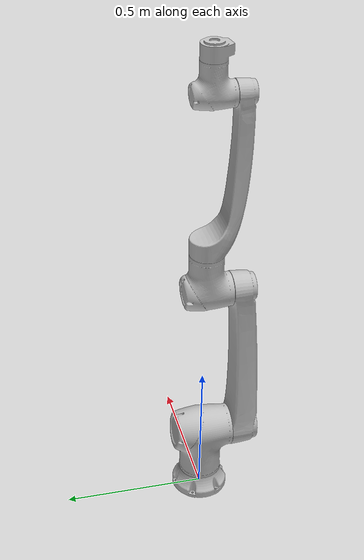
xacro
<robot
  name="elfin10_l" xmlns:xacro="http://www.ros.org/wiki/xacro">

  <xacro:include filename="$(find elfin_description)/urdf/materials.xacro" />

  <xacro:include filename="$(find elfin_description)/urdf/elfin_robot.gazebo" />

  <xacro:include filename="$(find elfin_description)/urdf/elfin_transmission.xacro" />

  <xacro:property name="coef" value="0.000000001"/>

  <link name="world" />

  <joint name="world_base" type="fixed">
    <origin
      xyz="0 0 0"
      rpy="0 0 0" />
    <parent
      link="world" />
    <child
      link="elfin_base_link" />
  </joint>

  <link name="elfin_base_link" />

  <joint name="elfin_base_joint" type="fixed">
    <origin
      xyz="0 0 0"
      rpy="0 0 0" />

    <parent
      link="elfin_base_link" />
    <child
      link="elfin_base" />
  </joint>
  <link
    name="elfin_base">
    <inertial>
      <origin
        xyz="-0.00226511349377665 4.35718066723423E-06 0.0325128562537015"
        rpy="0 0 0" />
      <mass
        value="1.66727740473724" />
      <inertia
        ixx="0.004269288474386"
        ixy="6.02518130623966E-08"
        ixz="-6.92087963593712E-05"
        iyy="0.00385585336301628"
        iyz="-5.51423740999103E-08"
        izz="0.00682044733276819" />
    </inertial>
    <visual>
      <origin
        xyz="0 0 0"
        rpy="0 0 0" />
      <geometry>
        <mesh
          filename="package://elfin_description/meshes/elfin10_l/elfin_base.STL" />
      </geometry>
      <material
        name="">
        <color
          rgba="0.752941176470588 0.752941176470588 0.752941176470588 1" />
      </material>
    </visual>
    <collision>
      <origin
        xyz="0 0 0"
        rpy="0 0 0" />
      <geometry>
        <mesh
          filename="package://elfin_description/meshes/elfin10_l/elfin_base.STL" />
      </geometry>
    </collision>
  </link>
  <link
    name="elfin_link1">
    <inertial>
      <origin
        xyz="7.6115220281183E-07 -0.00299993146131653 -0.0432740318305943"
        rpy="0 0 0" />
      <mass
        value="6.35899572879904" />
      <inertia
        ixx="0.0391771189350117"
        ixy="5.46819690041112E-08"
        ixz="4.18972540516351E-07"
        iyy="0.0381555139127934"
        iyz="0.00661206821297882"
        izz="0.0211340214080411" />
    </inertial>
    <visual>
      <origin
        xyz="0 0 0"
        rpy="0 0 0" />
      <geometry>
        <mesh
          filename="package://elfin_description/meshes/elfin10_l/elfin_link1.STL" />
      </geometry>
      <material
        name="">
        <color
          rgba="0.752941176470588 0.752941176470588 0.752941176470588 1" />
      </material>
    </visual>
    <collision>
      <origin
        xyz="0 0 0"
        rpy="0 0 0" />
      <geometry>
        <mesh
          filename="package://elfin_description/meshes/elfin10_l/elfin_link1.STL" />
      </geometry>
    </collision>
  </link>
  <joint
    name="elfin_joint1"
    type="revolute">
    <origin
      xyz="0 0 0.26"
      rpy="0 0 0" />
    <parent
      link="elfin_base" />
    <child
      link="elfin_link1" />
    <axis
      xyz="0 0 1" />
    <limit
      lower="-3.14"
      upper="3.14"
      effort="420"
      velocity="1.57" />
  </joint>
  <link
    name="elfin_link2">
    <inertial>
      <origin
        xyz="1.26562279557746E-05 0.258784601799915 0.144926112167098"
        rpy="0 0 0" />
      <mass
        value="6.55089875805688" />
      <inertia
        ixx="0.247195043947412"
        ixy="-2.70734939897219E-05"
        ixz="-3.78513402564327E-06"
        iyy="0.0107113621840064"
        iyz="0.00837472845545797"
        izz="0.250565757745814" />
    </inertial>
    <visual>
      <origin
        xyz="0 0 0"
        rpy="0 0 0" />
      <geometry>
        <mesh
          filename="package://elfin_description/meshes/elfin10_l/elfin_link2.STL" />
      </geometry>
      <material
        name="">
        <color
          rgba="0.752941176470588 0.752941176470588 0.752941176470588 1" />
      </material>
    </visual>
    <collision>
      <origin
        xyz="0 0 0"
        rpy="0 0 0" />
      <geometry>
        <mesh
          filename="package://elfin_description/meshes/elfin10_l/elfin_link2.STL" />
      </geometry>
    </collision>
  </link>
  <joint
    name="elfin_joint2"
    type="revolute">
    <origin
      xyz="0 0 0"
      rpy="1.5708 0 0" />
    <parent
      link="elfin_link1" />
    <child
      link="elfin_link2" />
    <axis
      xyz="0 0 1" />
   <limit
      lower="-2.35"
      upper="2.35"
      effort="420"
      velocity="1.57" />
  </joint>
  <link
    name="elfin_link3">
    <inertial>
      <origin
        xyz="0.0357493010325542 -2.74306218542934E-06 -0.00441107033859726"
        rpy="0 0 0" />
      <mass
        value="3.25128088176386" />
      <inertia
        ixx="0.00712273848825832"
        ixy="4.14583629905974E-07"
        ixz="-0.00240614658525448"
        iyy="0.0131139012868194"
        iyz="-1.53857409851211E-07"
        izz="0.0123861174715061" />
    </inertial>
    <visual>
      <origin
        xyz="0 0 0"
        rpy="0 0 0" />
      <geometry>
        <mesh
          filename="package://elfin_description/meshes/elfin10_l/elfin_link3.STL" />
      </geometry>
      <material
        name="">
        <color
          rgba="0.752941176470588 0.752941176470588 0.752941176470588 1" />
      </material>
    </visual>
    <collision>
      <origin
        xyz="0 0 0"
        rpy="0 0 0" />
      <geometry>
        <mesh
          filename="package://elfin_description/meshes/elfin10_l/elfin_link3.STL" />
      </geometry>
    </collision>
  </link>
  <joint
    name="elfin_joint3"
    type="revolute">
    <origin
      xyz="0 0.6 0"
      rpy="3.1416 0 1.5708" />
    <parent
      link="elfin_link2" />
    <child
      link="elfin_link3" />
    <axis
      xyz="0 0 1" />
    <limit
      lower="-2.61"
      upper="2.61"
      effort="200"
      velocity="1.57" />
  </joint>
  <link
    name="elfin_link4">
    <inertial>
      <origin
        xyz="9.41736425899586E-06 -0.0708125543068235 0.382493072990425"
        rpy="0 0 0" />
      <mass
        value="3.07863708461763" />
      <inertia
        ixx="0.0973868129912769"
        ixy="8.21409630969152E-07"
        ixz="-1.350925536562E-05"
        iyy="0.0935349784705533"
        iyz="0.0161279916812234"
        izz="0.00772306307372368" />
    </inertial>
    <visual>
      <origin
        xyz="0 0 0"
        rpy="0 0 0" />
      <geometry>
        <mesh
          filename="package://elfin_description/meshes/elfin10_l/elfin_link4.STL" />
      </geometry>
      <material
        name="">
        <color
          rgba="0.752941176470588 0.752941176470588 0.752941176470588 1" />
      </material>
    </visual>
    <collision>
      <origin
        xyz="0 0 0"
        rpy="0 0 0" />
      <geometry>
        <mesh
          filename="package://elfin_description/meshes/elfin10_l/elfin_link4.STL" />
      </geometry>
    </collision>
  </link>
  <joint
    name="elfin_joint4"
    type="revolute">
    <origin
      xyz="0 0 0"
      rpy="1.5708 0 1.5708" />
    <parent
      link="elfin_link3" />
    <child
      link="elfin_link4" />
    <axis
      xyz="0 0 1" />
    <limit
      lower="-3.14"
      upper="3.14"
      effort="200"
      velocity="1.57" />
  </joint>
  <link
    name="elfin_link5">
    <inertial>
      <origin
        xyz="5.36985381304584E-06 -0.0262387102325345 -0.00353411562719939"
        rpy="0 0 0" />
      <mass
        value="1.39255462129319" />
      <inertia
        ixx="0.0033626143916346"
        ixy="2.21088132953804E-07"
        ixz="-5.59694684135057E-07"
        iyy="0.00182232508909043"
        iyz="0.000639319390604948"
        izz="0.00292731840916777" />
    </inertial>
    <visual>
      <origin
        xyz="0 0 0"
        rpy="0 0 0" />
      <geometry>
        <mesh
          filename="package://elfin_description/meshes/elfin10_l/elfin_link5.STL" />
      </geometry>
      <material
        name="">
        <color
          rgba="0.752941176470588 0.752941176470588 0.752941176470588 1" />
      </material>
    </visual>
    <collision>
      <origin
        xyz="0 0 0"
        rpy="0 0 0" />
      <geometry>
        <mesh
          filename="package://elfin_description/meshes/elfin10_l/elfin_link5.STL" />
      </geometry>
    </collision>
  </link>
  <joint
    name="elfin_joint5"
    type="revolute">
    <origin
      xyz="0 0 0.7"
      rpy="-1.5708 0 0" />
    <parent
      link="elfin_link4" />
    <child
      link="elfin_link5" />
    <axis
      xyz="0 0 1" />
    <limit
      lower="-2.56"
      upper="2.56"
      effort="69"
      velocity="1.57" />
  </joint>
  <link
    name="elfin_link6">
    <inertial>
      <origin
        xyz="-8.44857343926925E-06 -0.000409018840054455 0.144623218142738"
        rpy="0 0 0" />
      <mass
        value="0.297726965259557" />
      <inertia
        ixx="0.000151947743938131"
        ixy="-1.77898422987818E-09"
        ixz="6.95728248075282E-08"
        iyy="0.000155012877715246"
        iyz="-8.70181917523095E-08"
        izz="0.000269962872258385" />
    </inertial>
    <visual>
      <origin
        xyz="0 0 0"
        rpy="0 0 0" />
      <geometry>
        <mesh
          filename="package://elfin_description/meshes/elfin10_l/elfin_link6.STL" />
      </geometry>
      <material
        name="">
        <color
          rgba="0.752941176470588 0.752941176470588 0.752941176470588 1" />
      </material>
    </visual>
    <collision>
      <origin
        xyz="0 0 0"
        rpy="0 0 0" />
      <geometry>
        <mesh
          filename="package://elfin_description/meshes/elfin10_l/elfin_link6.STL" />
      </geometry>
    </collision>
  </link>
  <joint
    name="elfin_joint6"
    type="revolute">
    <origin
      xyz="0 0 0"
      rpy="1.5708 0 0" />
    <parent
      link="elfin_link5" />
    <child
      link="elfin_link6" />
    <axis
      xyz="0 0 1" />
   <limit
      lower="-3.14"
      upper="3.14"
      effort="69"
      velocity="1.57" />
  </joint>
  <link
    name="elfin_end_link"/>
  <joint
    name="elfin_end_joint"
    type="fixed">
    <origin
      xyz="0 0.0 0.1735"
      rpy="0 0 0" />
    <parent
      link="elfin_link6" />
    <child
      link="elfin_end_link" />
    <axis
      xyz="0 0 0" />
  </joint>

 <link name="elfin_dummy_gripper"/>

  <joint name="elfin_dummy_joint" type="fixed">
    <origin
      xyz="0 0.109 0"
      rpy="-1.5708 -1.5708 0" />
    <parent
      link="elfin_link6" />
    <child
      link="elfin_dummy_gripper" />
  </joint>

</robot>

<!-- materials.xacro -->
<robot xmlns:xacro="http://www.ros.org/wiki/xacro">

  <material name="black">
    <color rgba="0.0 0.0 0.0 1.0"/>
  </material>

  <material name="blue">
    <color rgba="0.0 0.0 0.8 1.0"/>
  </material>

  <material name="green">
    <color rgba="0.0 0.8 0.0 1.0"/>
  </material>

  <material name="grey">
    <color rgba="0.2 0.2 0.2 1.0"/>
  </material>

  <material name="orange">
    <color rgba="${255/255} ${108/255} ${10/255} 1.0"/>
  </material>

  <material name="brown">
    <color rgba="${222/255} ${207/255} ${195/255} 1.0"/>
  </material>

  <material name="red">
    <color rgba="0.8 0.0 0.0 1.0"/>
  </material>

  <material name="white">
    <color rgba="1.0 1.0 1.0 1.0"/>
  </material>

  <material name="metal">
    <color rgba="0.768627450980392 0.749019607843137 0.729411764705882 1" />
  </material>

  <material name="metal_grey">
    <color rgba="0.501960784313725 0.501960784313725 0.501960784313725 1" />
  </material>

  <material name="metal_white">
    <color rgba="0.866666666666667 0.866666666666667 0.890196078431373 1" />
  </material>

</robot>
